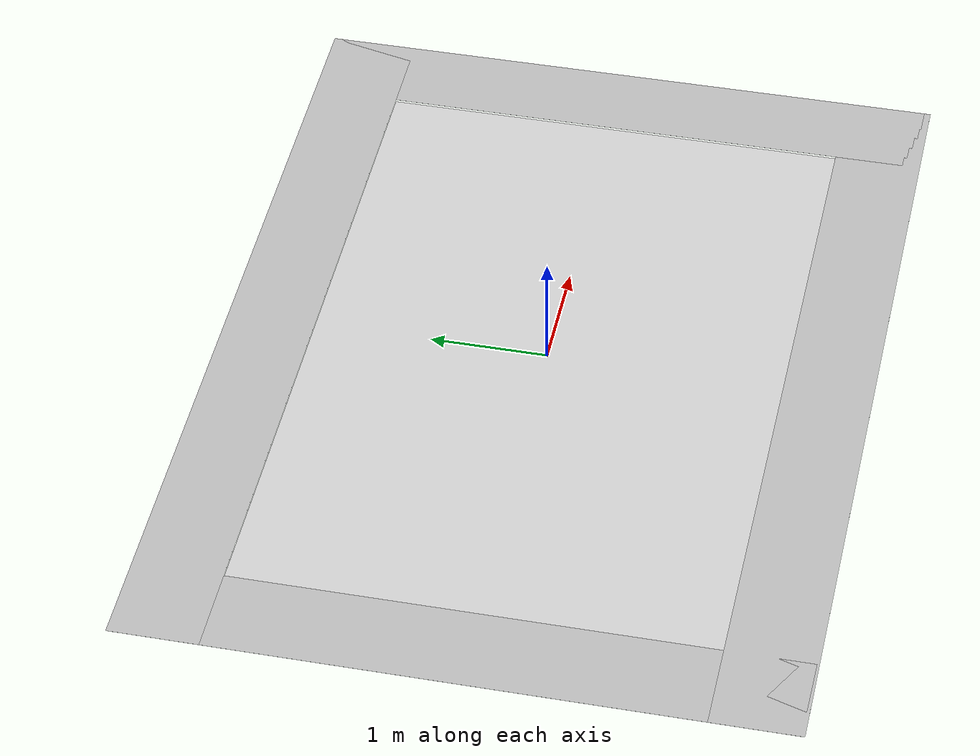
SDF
<?xml version="1.0" ?>
<sdf version="1.4">
  <model name="RoboCup15_MSL_Field">
    <static>true</static>

    <link name="chassis">
      <pose>0 0 0.01 0 0 0</pose>
      <collision name="collision">
        <geometry>
          <plane>
            <normal>0 0 1</normal>
            <size>6 4</size>
          </plane>
        </geometry>
        <surface>
          <friction>
            <ode>
              <mu>100</mu>
              <mu2>50</mu2>
            </ode>
          </friction>
        </surface>
      </collision>

      <visual name="carpet">
        <cast_shadows>false</cast_shadows>
        <geometry>
          <plane>
            <normal>0 0 1</normal>
            <size>6 4</size>
          </plane>
        </geometry>
        <material>
          <script>
            <uri>file://materials/scripts/</uri>
            <uri>file://materials/textures/</uri>
            <name>RoboCup/Carpet</name>
          </script>
        </material>
      </visual>

       <visual name="base1">
        <pose>0 2.375 0.01 0 0 0</pose>
        <cast_shadows>false</cast_shadows>
        <geometry>
          <plane>
            <normal>0 0 1</normal>
            <size>7.5 0.75</size>
          </plane>
        </geometry>
        <material>
          <script>
            <uri>file://materials/scripts/</uri>
            <uri>file://materials/textures/</uri>
            <name>RoboCup/FieldBorder</name>
          </script>
        </material>
      </visual>
      <visual name="base2">
        <pose>0 -2.375 0.01 0 0 0</pose>
        <cast_shadows>false</cast_shadows>
        <geometry>
          <plane>
            <normal>0 0 1</normal>
            <size>7.5 0.75</size>
          </plane>
        </geometry>
        <material>
          <script>
            <uri>file://materials/scripts/</uri>
            <uri>file://materials/textures/</uri>
            <name>RoboCup/FieldBorder</name>
          </script>
        </material>
      </visual>
      <visual name="base3">
        <pose>3.375 0 0.01 0 0 0</pose>
        <cast_shadows>false</cast_shadows>
        <geometry>
          <plane>
            <normal>0 0 1</normal>
            <size>0.75 5.5</size>
          </plane>
        </geometry>
        <material>
          <script>
            <uri>file://materials/scripts/</uri>
            <uri>file://materials/textures/</uri>
            <name>RoboCup/FieldBorder</name>
          </script>
        </material>
      </visual>
      <visual name="base4">
        <pose>-3.375 0 0.01 0 0 0</pose>
        <cast_shadows>false</cast_shadows>
        <geometry>
          <plane>
            <normal>0 0 1</normal>
            <size>0.75 5.5</size>
          </plane>
        </geometry>
        <material>
          <script>
            <uri>file://materials/scripts/</uri>
            <uri>file://materials/textures/</uri>
            <name>RoboCup/FieldBorder</name>
          </script>
        </material>
      </visual>
    </link>

  </model>
</sdf>
